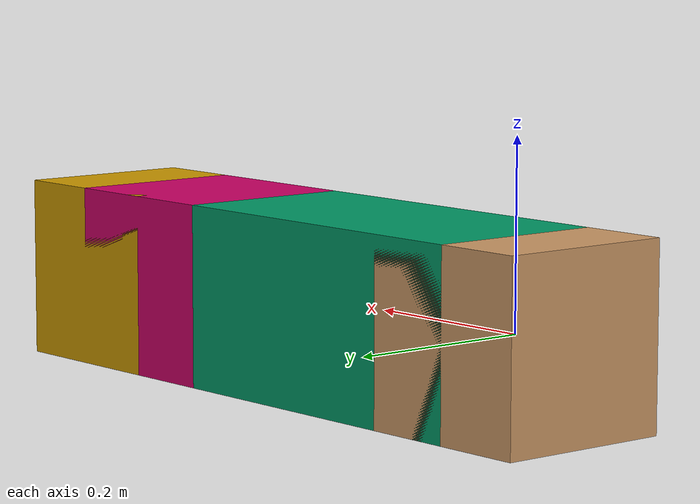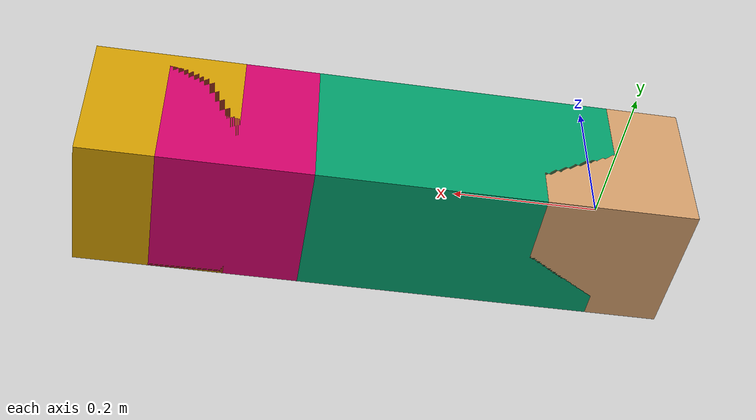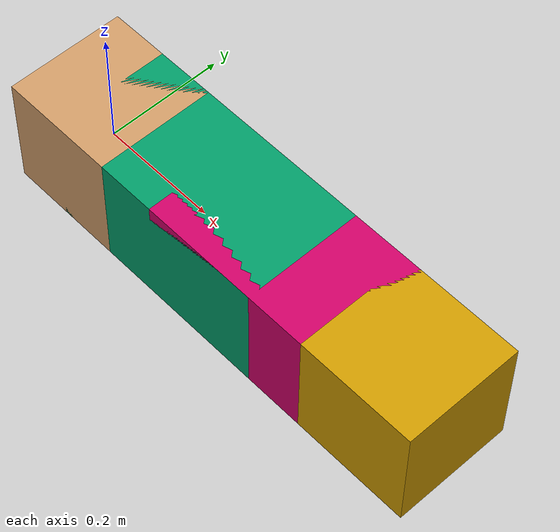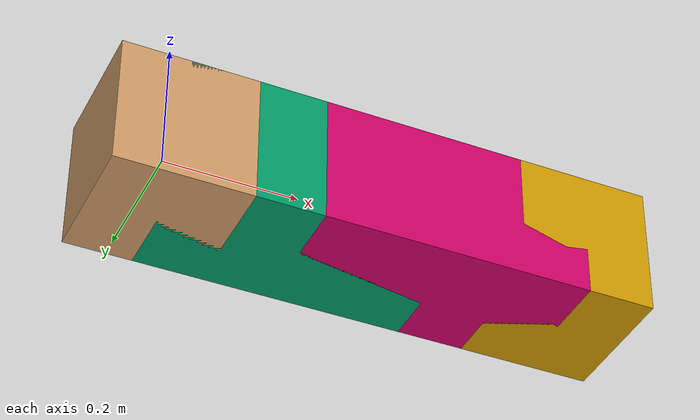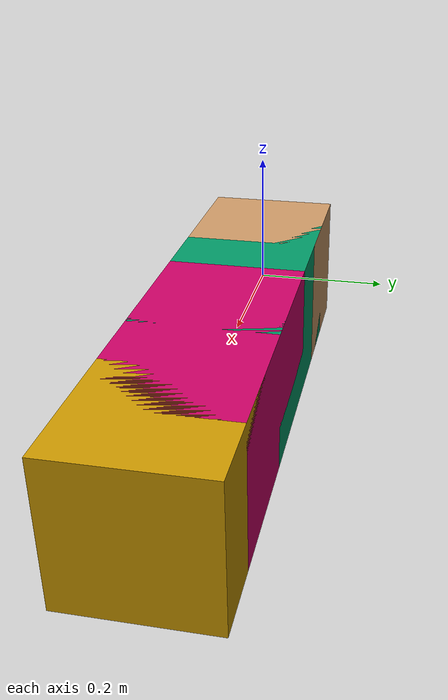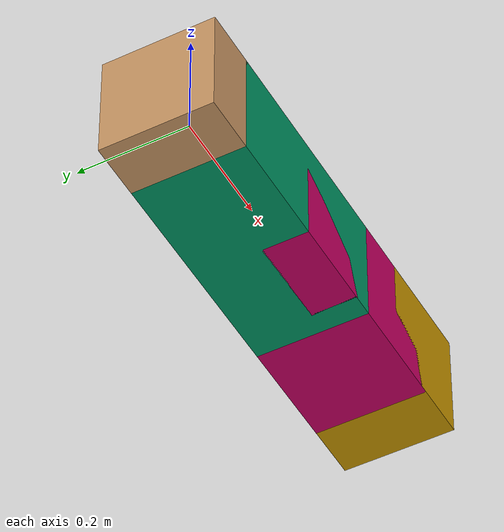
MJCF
<mujoco>
    <!-- 实验 验证建模并联机构 -->
    <option timestep="0.0001" integrator="RK4" gravity="0 0 -10">
        <flag sensornoise="enable" contact="enable" energy="enable" />
    </option>

    <statistic center="0 0 0.55" extent="1.1" />

    <visual>
        <headlight diffuse="0.6 0.6 0.6" ambient="0.3 0.3 0.3" specular="0 0 0" />
        <rgba haze="0.15 0.25 0.35 1" />
        <global azimuth="150" elevation="-20" />
    </visual>

    <asset>
        <texture type="skybox" builtin="gradient" rgb1="0.3 0.5 0.7" rgb2="0 0 0" width="512"
            height="3072" />
        <texture type="2d" name="groundplane" builtin="checker" mark="edge" rgb1="0.2 0.3 0.4"
            rgb2="0.1 0.2 0.3"
            markrgb="0.8 0.8 0.8" width="300" height="300" />
        <material name="groundplane" texture="groundplane" texuniform="true" texrepeat="5 5"
            reflectance="0.2" />
    </asset>

    <worldbody>
        <body name="base" pos="0 0 0">
            <geom type="box" size="0.1 0.1 0.1" rgba="0.8 0.6 0.4 1" />
            <joint name="slider" type="slide" axis="1 0 0" />
            <body name="link1" pos="0.2 0 0">
                <geom type="box" size="0.2 0.1 0.1" rgba="0. 0.6 0.4 1" />
                <joint name="hinge1" type="hinge" axis="0 1 0" />
                <body name="link2" pos="0.2 0 0">
                    <geom type="box" size="0.2 0.1 0.1" rgba="0.8 0. 0.4 1" />
                    <joint name="hinge2" type="hinge" axis="0 1 0" />
                    <body name="end_effector" pos="0.2 0 0">
                        <geom type="box" size="0.1 0.1 0.1" rgba="0.8 0.6 0. 1" />
                    </body>
                </body>
            </body>
        </body>
    </worldbody>

</mujoco>
